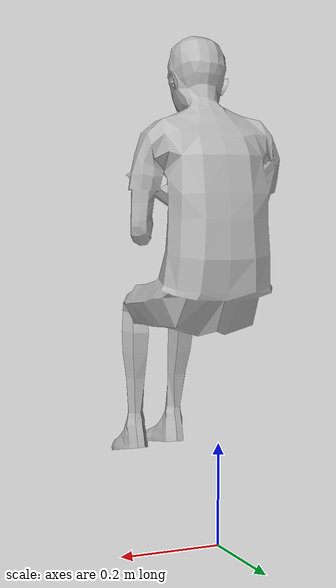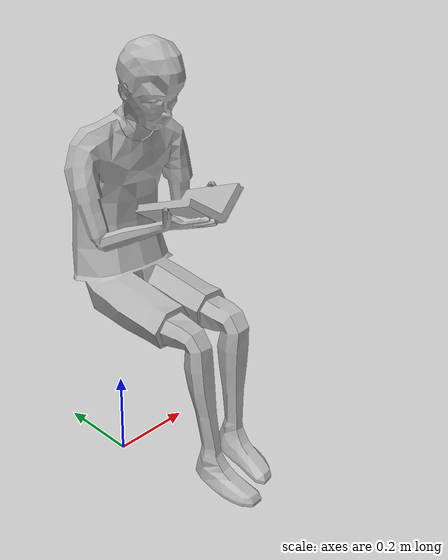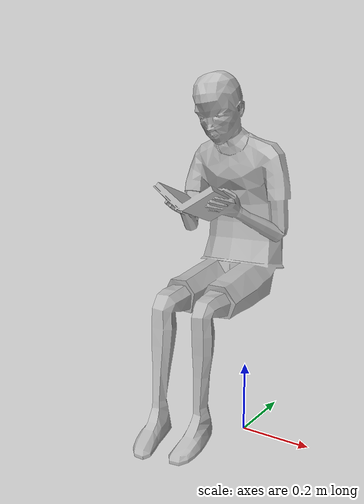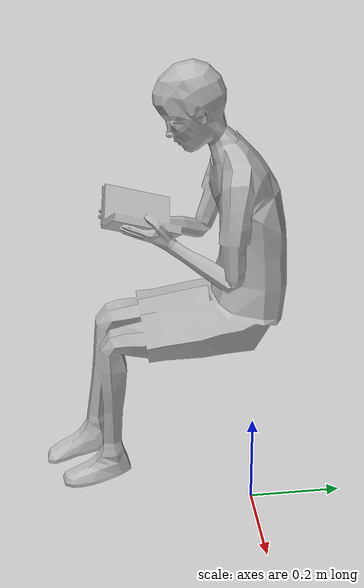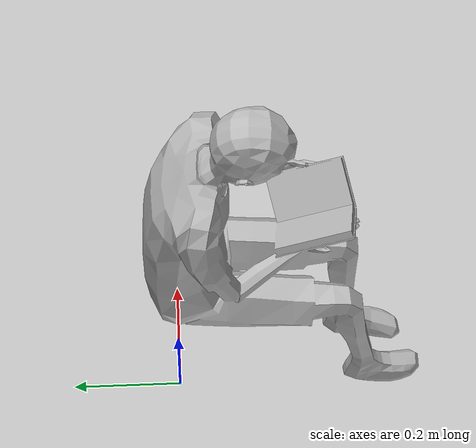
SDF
<?xml version='1.0' encoding='utf-8'?>
<sdf version="1.6">
  <model name="VisitorKidSit">
   <static>false</static>
    <link name="body">
      <pose>0 0 0 0 0 0</pose>

      <visual name="visual">
        <geometry>
          <mesh>
            <uri>file:///workspaces/robman-final-proj/assets/VisitorKidSit/meshes/VisitorKidSit.obj</uri>
          </mesh>
        </geometry>
      </visual>

      <collision name="collision">
        <geometry>
          <mesh>
            <uri>file:///workspaces/robman-final-proj/assets/VisitorKidSit/meshes/VisitorKidSit.obj</uri>
          </mesh>
        </geometry>
      </collision>

    </link>
  </model>
</sdf>
